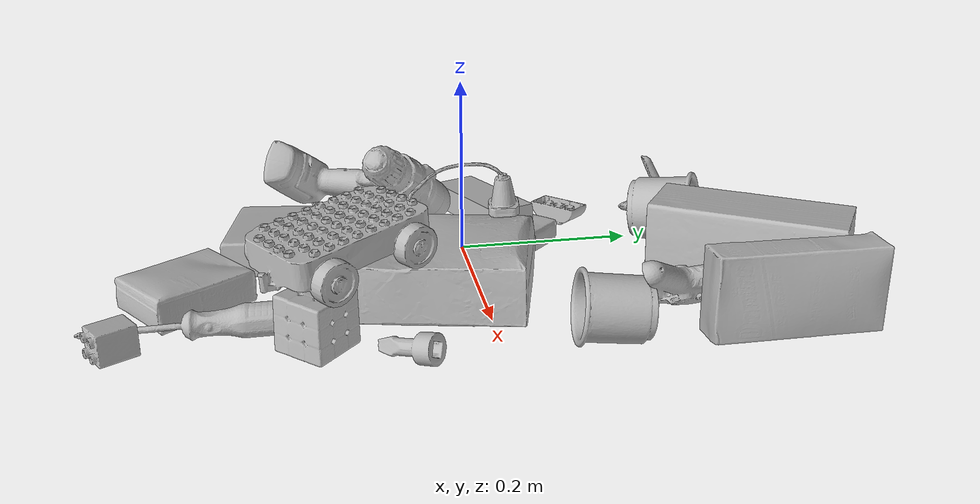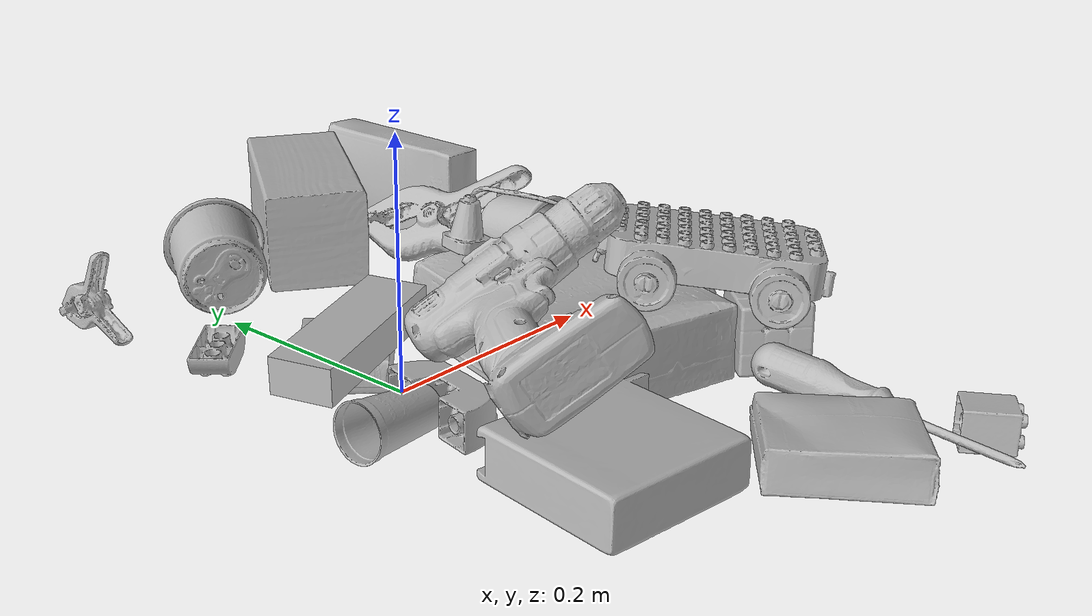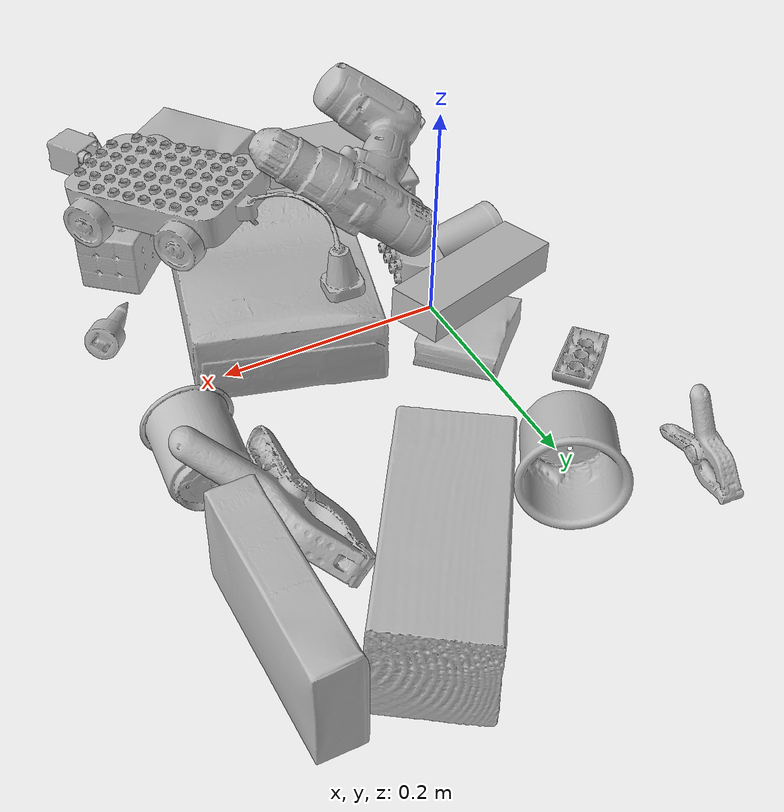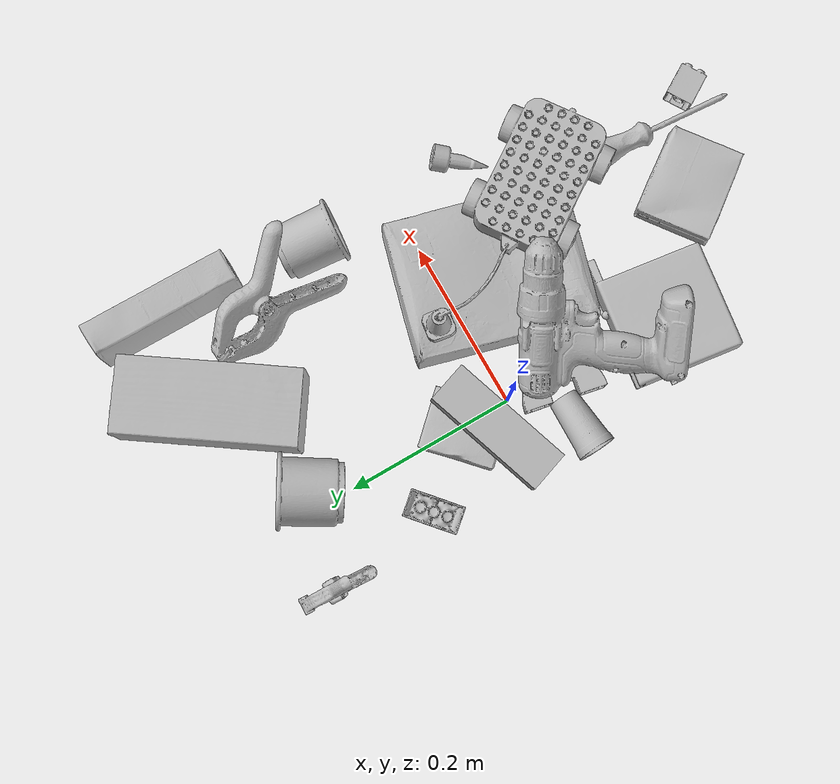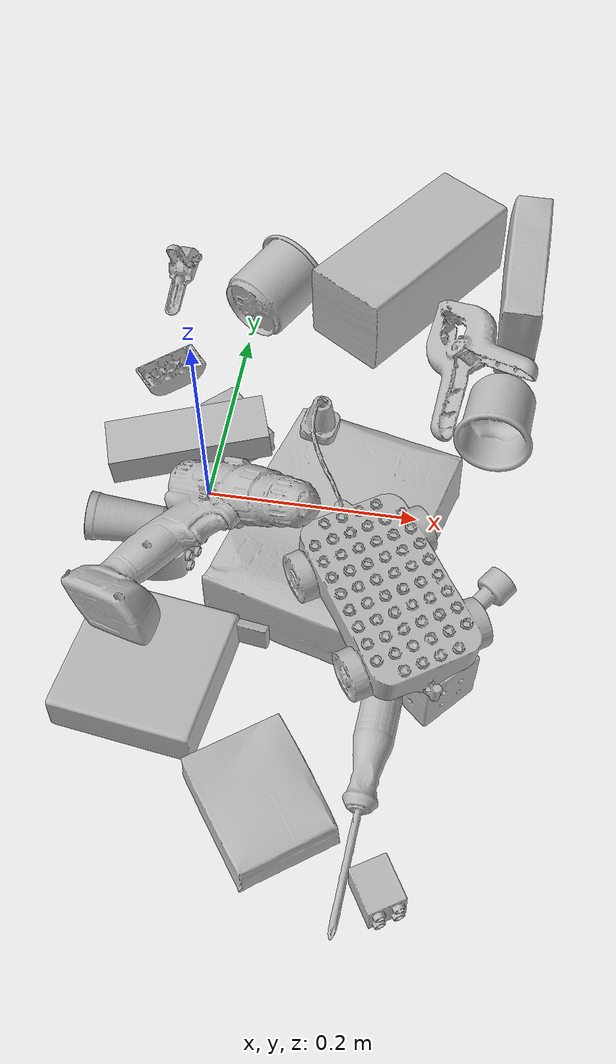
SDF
<sdf version="1.4">
  <world name="default">
    <light name="light1" type="point">
      <pose>0 0 1 0 0 0</pose>
      <diffuse>3 3 3 1</diffuse>
      <specular>3 3 3 1</specular>
    </light>
    <light name="light2" type="point">
      <pose>0 0.5 2 0 0 0</pose>
      <diffuse>1 1 1 1</diffuse>
      <specular>1 1 1 1</specular>
    </light>
    <light name="light3" type="point">
      <pose>0 0.5 2 0 0 0</pose>
      <diffuse>3 3 3 1</diffuse>
      <specular>3 3 3 1</specular>
    </light>
    <scene>
      <ambient>0.7 0.7 0.7</ambient>
    </scene>
    <model name="box21">
      <link name="link_box21">
        <collision name="default">
          <geometry>
            <mesh>
              <uri>model://cracker_box/collision_meshes/collision.obj</uri>
              <scale>1.0 1.0 1.0</scale>
            </mesh>
          </geometry>
          <surface>
            <friction>
              <ode>
                <mu>0.5</mu>
                <mu2>0.5</mu2>
              </ode>
            </friction>
          <contact>
        <ode>
            <max_vel>0</max_vel>
            <min_depth>0.0001</min_depth>
            <kp>1e8</kp>
        </ode>
    </contact></surface>
        </collision>
        <visual name="default">
          <geometry>
            <mesh>
              <uri>model://cracker_box/visual_meshes/visual.dae</uri>
              <scale>1.0 1.0 1.0</scale>
            </mesh>
          </geometry>
        </visual>
        <inertial>
          <mass>2.590176582336426</mass>
          <pose>0.0009464152390137315 0.00025434247800149024 -0.0017029535956680775 -0.0003162072774594163 -0.011106486806667554 0.0025467954652388498</pose>
          <inertia>
            <ixx>0.0065882523</ixx>
            <iyy>0.0108785</iyy>
            <izz>0.015524619</izz>
            <ixy>0</ixy>
            <ixz>0</ixz>
            <iyz>0</iyz>
          </inertia>
        </inertial>
      </link>
      <pose>0.13119426369667053 -0.05298280715942383 0.03638414293527603 -0.014049192632928791 -0.00501550280427166 1.3050324932315012</pose>
    </model>
    <model name="box22">
      <link name="link_box22">
        <collision name="default">
          <geometry>
            <mesh>
              <uri>model://gelatin_box/collision_meshes/collision.obj</uri>
              <scale>1.0 1.0 1.0</scale>
            </mesh>
          </geometry>
          <surface>
            <friction>
              <ode>
                <mu>0.5</mu>
                <mu2>0.5</mu2>
              </ode>
            </friction>
          <contact>
        <ode>
            <max_vel>0</max_vel>
            <min_depth>0.0001</min_depth>
            <kp>1e8</kp>
        </ode>
    </contact></surface>
        </collision>
        <visual name="default">
          <geometry>
            <mesh>
              <uri>model://gelatin_box/visual_meshes/visual.dae</uri>
              <scale>1.0 1.0 1.0</scale>
            </mesh>
          </geometry>
        </visual>
        <inertial>
          <mass>0.25047940015792847</mass>
          <pose>0.0004319618456065655 0.00011156871914863586 -0.0003640321083366871 -0.0010503719848663328 -0.004755819155031653 0.016440561334722496</pose>
          <inertia>
            <ixx>0.00017681804</ixx>
            <iyy>0.00012630019</iyy>
            <izz>0.0002691564</izz>
            <ixy>0</ixy>
            <ixz>0</ixz>
            <iyz>0</iyz>
          </inertia>
        </inertial>
      </link>
      <pose>-0.0030400617979466915 0.05812223628163338 0.015234598889946938 4.654665044004012e-05 -9.534656632846196e-05 2.3224927454784905</pose>
    </model>
    <model name="box23">
      <link name="link_box23">
        <collision name="default">
          <geometry>
            <mesh>
              <uri>model://pudding_box/collision_meshes/collision.obj</uri>
              <scale>1.0 1.0 1.0</scale>
            </mesh>
          </geometry>
          <surface>
            <friction>
              <ode>
                <mu>0.5</mu>
                <mu2>0.5</mu2>
              </ode>
            </friction>
          <contact>
        <ode>
            <max_vel>0</max_vel>
            <min_depth>0.0001</min_depth>
            <kp>1e8</kp>
        </ode>
    </contact></surface>
        </collision>
        <visual name="default">
          <geometry>
            <mesh>
              <uri>model://pudding_box/visual_meshes/visual.dae</uri>
              <scale>1.0 1.0 1.0</scale>
            </mesh>
          </geometry>
        </visual>
        <inertial>
          <mass>0.39469316601753235</mass>
          <pose>0.0004894821904599667 0.000806788622867316 -0.0005188827635720372 0.005213100892100292 -0.006603796836808699 0.020079821441474487</pose>
          <inertia>
            <ixx>0.00044618026</ixx>
            <iyy>0.00030019323</iyy>
            <izz>0.00065890176</izz>
            <ixy>0</ixy>
            <ixz>0</ixz>
            <iyz>0</iyz>
          </inertia>
        </inertial>
      </link>
      <pose>0.10849082469940186 -0.303329199552536 0.018686015158891678 -3.141592650755539 -2.9500507857415767e-08 0.6377577891416849</pose>
    </model>
    <model name="cup1">
      <link name="link_cup1">
        <collision name="default">
          <geometry>
            <mesh>
              <uri>model://cup_small/collision_meshes/collision.obj</uri>
              <scale>1.0 1.0 1.0</scale>
            </mesh>
          </geometry>
          <surface>
            <friction>
              <ode>
                <mu>0.5</mu>
                <mu2>0.5</mu2>
              </ode>
            </friction>
          <contact>
        <ode>
            <max_vel>0</max_vel>
            <min_depth>0.0001</min_depth>
            <kp>1e8</kp>
        </ode>
    </contact></surface>
        </collision>
        <visual name="default">
          <geometry>
            <mesh>
              <uri>model://cup_small/visual_meshes/visual.dae</uri>
              <scale>1.0 1.0 1.0</scale>
            </mesh>
          </geometry>
        </visual>
        <inertial>
          <mass>0.021035347133874893</mass>
          <pose>0.0001048244594130665 -0.0003377834218554199 -0.010742821730673313 -0.011493211249102088 -0.015280240526329824 -0.5058153233609384</pose>
          <inertia>
            <ixx>1.2385285e-05</ixx>
            <iyy>1.2449176e-05</iyy>
            <izz>5.591994e-06</izz>
            <ixy>0</ixy>
            <ixz>0</ixz>
            <iyz>0</iyz>
          </inertia>
        </inertial>
      </link>
      <pose>-0.06360545754432678 -0.05608911067247391 0.019567439332604408 -1.4757005304573532 0.39596591763108296 1.6568911129600254</pose>
    </model>
    <model name="cup2">
      <link name="link_cup2">
        <collision name="default">
          <geometry>
            <mesh>
              <uri>model://e_cups/collision_meshes/collision.obj</uri>
              <scale>1.0 1.0 1.0</scale>
            </mesh>
          </geometry>
          <surface>
            <friction>
              <ode>
                <mu>0.5</mu>
                <mu2>0.5</mu2>
              </ode>
            </friction>
          <contact>
        <ode>
            <max_vel>0</max_vel>
            <min_depth>0.0001</min_depth>
            <kp>1e8</kp>
        </ode>
    </contact></surface>
        </collision>
        <visual name="default">
          <geometry>
            <mesh>
              <uri>model://e_cups/visual_meshes/visual.dae</uri>
              <scale>1.0 1.0 1.0</scale>
            </mesh>
          </geometry>
        </visual>
        <inertial>
          <mass>0.053841520100831985</mass>
          <pose>0.0011355747701600194 0.0028797851409763098 -0.0038829720579087734 0.69523823542345 0.08767615215021585 -0.5235238319868403</pose>
          <inertia>
            <ixx>4.7474743e-05</ixx>
            <iyy>4.9617902e-05</iyy>
            <izz>4.5391338e-05</izz>
            <ixy>0</ixy>
            <ixz>0</ixz>
            <iyz>0</iyz>
          </inertia>
        </inertial>
      </link>
      <pose>0.2644653022289276 0.10611926764249802 0.03464793041348457 -1.4828011643804277 -0.045312148298386236 3.0465372695765303</pose>
    </model>
    <model name="box11">
      <link name="link_box11">
        <collision name="default">
          <geometry>
            <mesh>
              <uri>model://jenga/collision_meshes/collision.obj</uri>
              <scale>1.0 1.0 1.0</scale>
            </mesh>
          </geometry>
          <surface>
            <friction>
              <ode>
                <mu>0.5</mu>
                <mu2>0.5</mu2>
              </ode>
            </friction>
          <contact>
        <ode>
            <max_vel>0</max_vel>
            <min_depth>0.0001</min_depth>
            <kp>1e8</kp>
        </ode>
    </contact></surface>
        </collision>
        <visual name="default">
          <geometry>
            <mesh>
              <uri>model://jenga/visual_meshes/visual.dae</uri>
              <scale>1.0 1.0 1.0</scale>
            </mesh>
          </geometry>
        </visual>
        <inertial>
          <mass>0.26362571120262146</mass>
          <pose>-2.502855807051674e-07 -0.00010250010382151231 -4.0923401684267446e-05 0.0 -7.342155186052628e-07 0.0</pose>
          <inertia>
            <ixx>7.295163e-05</ixx>
            <iyy>0.0004943182</iyy>
            <izz>0.0005277267</izz>
            <ixy>0</ixy>
            <ixz>0</ixz>
            <iyz>0</iyz>
          </inertia>
        </inertial>
      </link>
      <pose>-0.02246442623436451 0.028532369062304497 0.04376836493611336 -3.1155268821542164 -0.05772397073442189 0.32948967976117516</pose>
    </model>
    <model name="box12">
      <link name="link_box12">
        <collision name="default">
          <geometry>
            <mesh>
              <uri>model://rubiks_cube/collision_meshes/collision.obj</uri>
              <scale>1.0 1.0 1.0</scale>
            </mesh>
          </geometry>
          <surface>
            <friction>
              <ode>
                <mu>0.5</mu>
                <mu2>0.5</mu2>
              </ode>
            </friction>
          <contact>
        <ode>
            <max_vel>0</max_vel>
            <min_depth>0.0001</min_depth>
            <kp>1e8</kp>
        </ode>
    </contact></surface>
        </collision>
        <visual name="default">
          <geometry>
            <mesh>
              <uri>model://rubiks_cube/visual_meshes/visual.dae</uri>
              <scale>1.0 1.0 1.0</scale>
            </mesh>
          </geometry>
        </visual>
        <inertial>
          <mass>0.2476155012845993</mass>
          <pose>2.6721041649580002e-05 5.256966323941015e-05 -7.2643156272533815e-06 -0.05467269607811095 -0.09813983501015876 -0.034455733913541106</pose>
          <inertia>
            <ixx>0.00013682418</ixx>
            <iyy>0.0001361861</iyy>
            <izz>0.00013795799</izz>
            <ixy>0</ixy>
            <ixz>0</ixz>
            <iyz>0</iyz>
          </inertia>
        </inertial>
      </link>
      <pose>0.22839367389678955 -0.17223325371742249 0.02933480590581894 1.5783259621369952 -0.01617392040190259 2.4061776624955935</pose>
    </model>
    <model name="box13">
      <link name="link_box13">
        <collision name="default">
          <geometry>
            <mesh>
              <uri>model://sugar_box/collision_meshes/collision.obj</uri>
              <scale>1.0 1.0 1.0</scale>
            </mesh>
          </geometry>
          <surface>
            <friction>
              <ode>
                <mu>0.5</mu>
                <mu2>0.5</mu2>
              </ode>
            </friction>
          <contact>
        <ode>
            <max_vel>0</max_vel>
            <min_depth>0.0001</min_depth>
            <kp>1e8</kp>
        </ode>
    </contact></surface>
        </collision>
        <visual name="default">
          <geometry>
            <mesh>
              <uri>model://sugar_box/visual_meshes/visual.dae</uri>
              <scale>1.0 1.0 1.0</scale>
            </mesh>
          </geometry>
        </visual>
        <inertial>
          <mass>0.6861893534660339</mass>
          <pose>0.0010343727190047503 3.849109634757042e-05 -0.0003636480250861496 -0.00040462627129080113 0.001050663522124822 0.0026153787889376494</pose>
          <inertia>
            <ixx>0.0005717311</ixx>
            <iyy>0.0018479523</iyy>
            <izz>0.0022122194</izz>
            <ixy>0</ixy>
            <ixz>0</ixz>
            <iyz>0</iyz>
          </inertia>
        </inertial>
      </link>
      <pose>0.27667492628097534 0.28247541189193726 0.04647856950759888 1.5758979834979623 0.0005374374482837112 1.5632228607843819</pose>
    </model>
    <model name="box14">
      <link name="link_box14">
        <collision name="default">
          <geometry>
            <mesh>
              <uri>model://wood_block/collision_meshes/collision.obj</uri>
              <scale>1.0 1.0 1.0</scale>
            </mesh>
          </geometry>
          <surface>
            <friction>
              <ode>
                <mu>0.5</mu>
                <mu2>0.5</mu2>
              </ode>
            </friction>
          <contact>
        <ode>
            <max_vel>0</max_vel>
            <min_depth>0.0001</min_depth>
            <kp>1e8</kp>
        </ode>
    </contact></surface>
        </collision>
        <visual name="default">
          <geometry>
            <mesh>
              <uri>model://wood_block/visual_meshes/visual.dae</uri>
              <scale>1.0 1.0 1.0</scale>
            </mesh>
          </geometry>
        </visual>
        <inertial>
          <mass>2.2081377506256104</mass>
          <pose>-5.813315965497168e-06 -0.000570809468626976 0.00026408585836179554 -0.052206634003801496 -0.0051926960857359 -0.00686137798931887</pose>
          <inertia>
            <ixx>0.0029548227</ixx>
            <iyy>0.009334286</iyy>
            <izz>0.0092993695</izz>
            <ixy>0</ixy>
            <ixz>0</ixz>
            <iyz>0</iyz>
          </inertia>
        </inertial>
      </link>
      <pose>0.15691226720809937 0.28917914628982544 0.04570081830024719 1.5681191179887712 -0.006940045435111194 0.9776401760648169</pose>
    </model>
    <model name="cup15">
      <link name="link_cup15">
        <collision name="default">
          <geometry>
            <mesh>
              <uri>model://g_cups/collision_meshes/collision.obj</uri>
              <scale>1.0 1.0 1.0</scale>
            </mesh>
          </geometry>
          <surface>
            <friction>
              <ode>
                <mu>0.5</mu>
                <mu2>0.5</mu2>
              </ode>
            </friction>
          <contact>
        <ode>
            <max_vel>0</max_vel>
            <min_depth>0.0001</min_depth>
            <kp>1e8</kp>
        </ode>
    </contact></surface>
        </collision>
        <visual name="default">
          <geometry>
            <mesh>
              <uri>model://g_cups/visual_meshes/visual.dae</uri>
              <scale>1.0 1.0 1.0</scale>
            </mesh>
          </geometry>
        </visual>
        <inertial>
          <mass>0.09534990042448044</mass>
          <pose>-0.000794626830611378 -4.206429366604425e-05 -0.002132937079295516 -0.21382187015428292 -0.3141046168173621 0.3112040328096479</pose>
          <inertia>
            <ixx>0.00011129469</ixx>
            <iyy>0.0001109161</iyy>
            <izz>0.00011528214</izz>
            <ixy>0</ixy>
            <ixz>0</ixz>
            <iyz>0</iyz>
          </inertia>
        </inertial>
      </link>
      <pose>0.019102122634649277 0.2416214495897293 0.040335915982723236 1.431360463274546 -0.7164747755986856 2.694814917773644</pose>
    </model>
    <model name="toy1">
      <link name="link_toy1">
        <collision name="default">
          <geometry>
            <mesh>
              <uri>model://a_lego_duplo/collision_meshes/collision.obj</uri>
              <scale>1.0 1.0 1.0</scale>
            </mesh>
          </geometry>
          <surface>
            <friction>
              <ode>
                <mu>0.5</mu>
                <mu2>0.5</mu2>
              </ode>
            </friction>
          <contact>
        <ode>
            <max_vel>0</max_vel>
            <min_depth>0.0001</min_depth>
            <kp>1e8</kp>
        </ode>
    </contact></surface>
        </collision>
        <visual name="default">
          <geometry>
            <mesh>
              <uri>model://a_lego_duplo/visual_meshes/visual.dae</uri>
              <scale>1.0 1.0 1.0</scale>
            </mesh>
          </geometry>
        </visual>
        <inertial>
          <mass>0.019288161769509315</mass>
          <pose>-0.00011337728938087821 0.00018517542048357427 0.00036926069878973067 -0.014116980162122142 -0.00012566491180396528 6.141847735431564e-05</pose>
          <inertia>
            <ixx>2.4728956e-06</ixx>
            <iyy>5.539828e-06</iyy>
            <izz>6.86231e-06</izz>
            <ixy>0</ixy>
            <ixz>0</ixz>
            <iyz>0</iyz>
          </inertia>
        </inertial>
      </link>
      <pose>-0.06684478372335434 0.13421975076198578 0.012124729342758656 -3.141287063153095 -0.015577628872840098 0.7076468597636003</pose>
    </model>
    <model name="toy2">
      <link name="link_toy2">
        <collision name="default">
          <geometry>
            <mesh>
              <uri>model://nine_hole_peg_test/collision_meshes/collision.obj</uri>
              <scale>1.0 1.0 1.0</scale>
            </mesh>
          </geometry>
          <surface>
            <friction>
              <ode>
                <mu>0.5</mu>
                <mu2>0.5</mu2>
              </ode>
            </friction>
          <contact>
        <ode>
            <max_vel>0</max_vel>
            <min_depth>0.0001</min_depth>
            <kp>1e8</kp>
        </ode>
    </contact></surface>
        </collision>
        <visual name="default">
          <geometry>
            <mesh>
              <uri>model://nine_hole_peg_test/visual_meshes/visual.dae</uri>
              <scale>1.0 1.0 1.0</scale>
            </mesh>
          </geometry>
        </visual>
        <inertial>
          <mass>0.4416040778160095</mass>
          <pose>-0.004617387894541025 -0.009647616185247898 2.646069333422929e-05 -0.001466680632441769 0.0007194151669294288 -0.6342433000636255</pose>
          <inertia>
            <ixx>0.00069052057</ixx>
            <iyy>0.0006447319</iyy>
            <izz>0.0012099957</izz>
            <ixy>0</ixy>
            <ixz>0</ixz>
            <iyz>0</iyz>
          </inertia>
        </inertial>
      </link>
      <pose>0.0030897939577698708 -0.19976508617401123 0.020791122689843178 3.141586395336604 -1.100115032287813e-05 1.431341529857439</pose>
    </model>
    <model name="toy3">
      <link name="link_toy3">
        <collision name="default">
          <geometry>
            <mesh>
              <uri>model://b_lego_duplo/collision_meshes/collision.obj</uri>
              <scale>1.0 1.0 1.0</scale>
            </mesh>
          </geometry>
          <surface>
            <friction>
              <ode>
                <mu>0.5</mu>
                <mu2>0.5</mu2>
              </ode>
            </friction>
          <contact>
        <ode>
            <max_vel>0</max_vel>
            <min_depth>0.0001</min_depth>
            <kp>1e8</kp>
        </ode>
    </contact></surface>
        </collision>
        <visual name="default">
          <geometry>
            <mesh>
              <uri>model://b_lego_duplo/visual_meshes/visual.dae</uri>
              <scale>1.0 1.0 1.0</scale>
            </mesh>
          </geometry>
        </visual>
        <inertial>
          <mass>0.05141952633857727</mass>
          <pose>-0.00011053046182496473 -9.15286273084348e-06 0.0019294298253953457 -0.03749504579203769 -0.026353926476799443 0.45190277296460496</pose>
          <inertia>
            <ixx>1.0523392e-05</ixx>
            <iyy>1.0594135e-05</iyy>
            <izz>9.376003e-06</izz>
            <ixy>0</ixy>
            <ixz>0</ixz>
            <iyz>0</iyz>
          </inertia>
        </inertial>
      </link>
      <pose>0.21173670887947083 -0.36158859729766846 0.016121331602334976 1.5723787703438366 -0.012011290337238417 0.5612256422815898</pose>
    </model>
    <model name="toy4">
      <link name="link_toy4">
        <collision name="default">
          <geometry>
            <mesh>
              <uri>model://e_lego_duplo/collision_meshes/collision.obj</uri>
              <scale>1.0 1.0 1.0</scale>
            </mesh>
          </geometry>
          <surface>
            <friction>
              <ode>
                <mu>0.5</mu>
                <mu2>0.5</mu2>
              </ode>
            </friction>
          <contact>
        <ode>
            <max_vel>0</max_vel>
            <min_depth>0.0001</min_depth>
            <kp>1e8</kp>
        </ode>
    </contact></surface>
        </collision>
        <visual name="default">
          <geometry>
            <mesh>
              <uri>model://e_lego_duplo/visual_meshes/visual.dae</uri>
              <scale>1.0 1.0 1.0</scale>
            </mesh>
          </geometry>
        </visual>
        <inertial>
          <mass>0.10851083695888519</mass>
          <pose>0.0003256036143284291 0.00023485413112211972 0.0019521439680829644 -0.022567807713092337 -6.825385155411165e-05 -0.007625153430497312</pose>
          <inertia>
            <ixx>2.2628092e-05</ixx>
            <iyy>9.28715e-05</iyy>
            <izz>9.0438196e-05</izz>
            <ixy>0</ixy>
            <ixz>0</ixz>
            <iyz>0</iyz>
          </inertia>
        </inertial>
      </link>
      <pose>-0.011518835090100765 -0.06100359186530113 0.01651807129383087 -1.5716289189464823 0.005900586464931303 -1.765846863048431</pose>
    </model>
    <model name="toy5">
      <link name="link_toy5">
        <collision name="default">
          <geometry>
            <mesh>
              <uri>model://e_toy_airplane/collision_meshes/collision.obj</uri>
              <scale>1.0 1.0 1.0</scale>
            </mesh>
          </geometry>
          <surface>
            <friction>
              <ode>
                <mu>0.5</mu>
                <mu2>0.5</mu2>
              </ode>
            </friction>
          <contact>
        <ode>
            <max_vel>0</max_vel>
            <min_depth>0.0001</min_depth>
            <kp>1e8</kp>
        </ode>
    </contact></surface>
        </collision>
        <visual name="default">
          <geometry>
            <mesh>
              <uri>model://e_toy_airplane/visual_meshes/visual.dae</uri>
              <scale>1.0 1.0 1.0</scale>
            </mesh>
          </geometry>
        </visual>
        <inertial>
          <mass>0.028576364740729332</mass>
          <pose>0.00011740469926735386 -2.248284363304265e-05 -0.011187203228473663 0.005518470588584354 0.009228302056362008 0.15041344019646216</pose>
          <inertia>
            <ixx>8.721834e-06</ixx>
            <iyy>8.6326145e-06</iyy>
            <izz>2.6212538e-06</izz>
            <ixy>0</ixy>
            <ixz>0</ixz>
            <iyz>0</iyz>
          </inertia>
        </inertial>
      </link>
      <pose>0.26451313495635986 -0.09093713015317917 0.01222122460603714 1.7424961644826211 -0.14002777357529347 -0.6966836844780113</pose>
    </model>
    <model name="toy6">
      <link name="link_toy6">
        <collision name="default">
          <geometry>
            <mesh>
              <uri>model://g_lego_duplo/collision_meshes/collision.obj</uri>
              <scale>1.0 1.0 1.0</scale>
            </mesh>
          </geometry>
          <surface>
            <friction>
              <ode>
                <mu>0.5</mu>
                <mu2>0.5</mu2>
              </ode>
            </friction>
          <contact>
        <ode>
            <max_vel>0</max_vel>
            <min_depth>0.0001</min_depth>
            <kp>1e8</kp>
        </ode>
    </contact></surface>
        </collision>
        <visual name="default">
          <geometry>
            <mesh>
              <uri>model://g_lego_duplo/visual_meshes/visual.dae</uri>
              <scale>1.0 1.0 1.0</scale>
            </mesh>
          </geometry>
        </visual>
        <inertial>
          <mass>0.2849176824092865</mass>
          <pose>-0.050047703087329865 0.0017554622609168291 0.0038806754164397717 0.010963023424049216 0.03810828912622395 -0.09653028734865207</pose>
          <inertia>
            <ixx>0.000412849</ixx>
            <iyy>0.0012481753</iyy>
            <izz>0.0015615128</izz>
            <ixy>0</ixy>
            <ixz>0</ixz>
            <iyz>0</iyz>
          </inertia>
        </inertial>
      </link>
      <pose>0.15683405101299286 -0.09425827860832214 0.09856165200471878 0.03237201629147341 -0.09235894631634735 2.170297137871309</pose>
    </model>
    <model name="hardware1">
      <link name="link_hardware1">
        <collision name="default">
          <geometry>
            <mesh>
              <uri>model://large_clamp/collision_meshes/collision.obj</uri>
              <scale>1.0 1.0 1.0</scale>
            </mesh>
          </geometry>
          <surface>
            <friction>
              <ode>
                <mu>0.5</mu>
                <mu2>0.5</mu2>
              </ode>
            </friction>
          <contact>
        <ode>
            <max_vel>0</max_vel>
            <min_depth>0.0001</min_depth>
            <kp>1e8</kp>
        </ode>
    </contact></surface>
        </collision>
        <visual name="default">
          <geometry>
            <mesh>
              <uri>model://large_clamp/visual_meshes/visual.dae</uri>
              <scale>1.0 1.0 1.0</scale>
            </mesh>
          </geometry>
        </visual>
        <inertial>
          <mass>0.15191641449928284</mass>
          <pose>0.006369356997311115 0.00035856704926118255 -0.00018398075189907104 -0.0021330805905738653 0.00967158570552682 0.02663313568730603</pose>
          <inertia>
            <ixx>0.00013403181</ixx>
            <iyy>0.0002545337</iyy>
            <izz>0.00036821538</izz>
            <ixy>0</ixy>
            <ixz>0</ixz>
            <iyz>0</iyz>
          </inertia>
        </inertial>
      </link>
      <pose>0.22716663777828217 0.18352451920509338 0.035639602690935135 -0.6562212809733453 0.13780709175342742 1.8719434522665908</pose>
    </model>
    <model name="hardware2">
      <link name="link_hardware2">
        <collision name="default">
          <geometry>
            <mesh>
              <uri>model://phillips_screwdriver/collision_meshes/collision.obj</uri>
              <scale>1.0 1.0 1.0</scale>
            </mesh>
          </geometry>
          <surface>
            <friction>
              <ode>
                <mu>0.5</mu>
                <mu2>0.5</mu2>
              </ode>
            </friction>
          <contact>
        <ode>
            <max_vel>0</max_vel>
            <min_depth>0.0001</min_depth>
            <kp>1e8</kp>
        </ode>
    </contact></surface>
        </collision>
        <visual name="default">
          <geometry>
            <mesh>
              <uri>model://phillips_screwdriver/visual_meshes/visual.dae</uri>
              <scale>1.0 1.0 1.0</scale>
            </mesh>
          </geometry>
        </visual>
        <inertial>
          <mass>0.09855502843856812</mass>
          <pose>-0.04777182266116142 0.001036230125464499 -0.00045555492397397757 -0.15717104537538515 0.005850995063257979 -0.0021567379341223374</pose>
          <inertia>
            <ixx>1.15792045e-05</ixx>
            <iyy>0.00014518296</iyy>
            <izz>0.00014530632</izz>
            <ixy>0</ixy>
            <ixz>0</ixz>
            <iyz>0</iyz>
          </inertia>
        </inertial>
      </link>
      <pose>0.18829293549060822 -0.2895662784576416 0.013953703455626965 3.0448368328927704 0.04767876878018861 -1.6369616310356194</pose>
    </model>
    <model name="hardware3">
      <link name="link_hardware3">
        <collision name="default">
          <geometry>
            <mesh>
              <uri>model://power_drill/collision_meshes/collision.obj</uri>
              <scale>1.0 1.0 1.0</scale>
            </mesh>
          </geometry>
          <surface>
            <friction>
              <ode>
                <mu>0.5</mu>
                <mu2>0.5</mu2>
              </ode>
            </friction>
          <contact>
        <ode>
            <max_vel>0</max_vel>
            <min_depth>0.0001</min_depth>
            <kp>1e8</kp>
        </ode>
    </contact></surface>
        </collision>
        <visual name="default">
          <geometry>
            <mesh>
              <uri>model://power_drill/visual_meshes/visual.dae</uri>
              <scale>1.0 1.0 1.0</scale>
            </mesh>
          </geometry>
        </visual>
        <inertial>
          <mass>0.8579708337783813</mass>
          <pose>-0.01478054840117693 0.01436943281441927 0.0012414173688739538 0.004609163561922946 0.004073017669368797 -0.18362705043487879</pose>
          <inertia>
            <ixx>0.0034962718</ixx>
            <iyy>0.0013756006</iyy>
            <izz>0.0046174442</izz>
            <ixy>0</ixy>
            <ixz>0</ixz>
            <iyz>0</iyz>
          </inertia>
        </inertial>
      </link>
      <pose>0.01907385140657425 -0.12614856660366058 0.09999538213014603 -0.0020264999739360197 -0.5710913362528325 -0.5393492620111185</pose>
    </model>
    <model name="hardware4">
      <link name="link_hardware4">
        <collision name="default">
          <geometry>
            <mesh>
              <uri>model://medium_clamp/collision_meshes/collision.obj</uri>
              <scale>1.0 1.0 1.0</scale>
            </mesh>
          </geometry>
          <surface>
            <friction>
              <ode>
                <mu>0.5</mu>
                <mu2>0.5</mu2>
              </ode>
            </friction>
          <contact>
        <ode>
            <max_vel>0</max_vel>
            <min_depth>0.0001</min_depth>
            <kp>1e8</kp>
        </ode>
    </contact></surface>
        </collision>
        <visual name="default">
          <geometry>
            <mesh>
              <uri>model://medium_clamp/visual_meshes/visual.dae</uri>
              <scale>1.0 1.0 1.0</scale>
            </mesh>
          </geometry>
        </visual>
        <inertial>
          <mass>0.019661318510770798</mass>
          <pose>0.005390993319451809 0.0003953249251935631 -0.00012221586075611413 -0.0012269159857183107 0.002584502991641296 0.038207758549707246</pose>
          <inertia>
            <ixx>5.356451e-06</ixx>
            <iyy>7.795151e-06</iyy>
            <izz>1.2006867e-05</izz>
            <ixy>0</ixy>
            <ixz>0</ixz>
            <iyz>0</iyz>
          </inertia>
        </inertial>
      </link>
      <pose>-0.08699705451726913 0.2706725001335144 0.024362370371818542 1.57656492806266 0.3934691634719678 1.5209119589823294</pose>
    </model>
  <physics type="ode">
      <max_contacts>50</max_contacts>
      <ode>
        <solver>
          <type>quick</type>
          <iters>75</iters>
        </solver>
        <constraints>
          <contact_max_correcting_vel>0</contact_max_correcting_vel>
          <contact_surface_layer>0</contact_surface_layer>
        </constraints>
      </ode>
    </physics></world>
</sdf>
